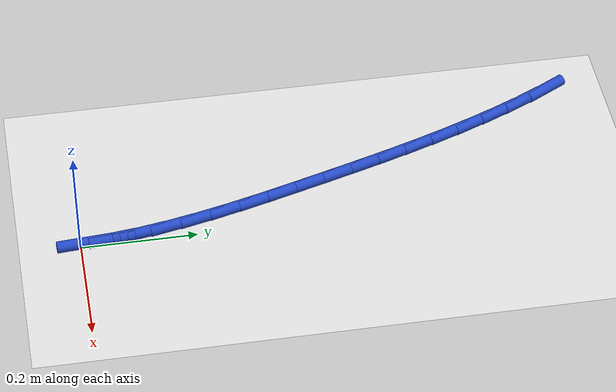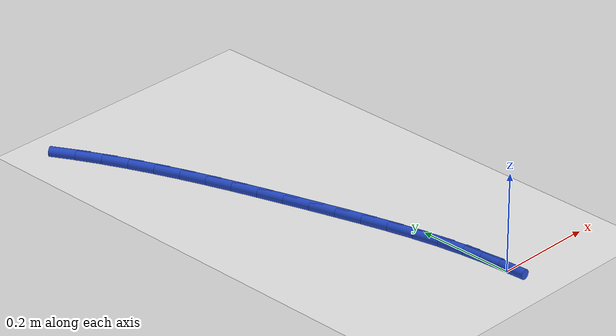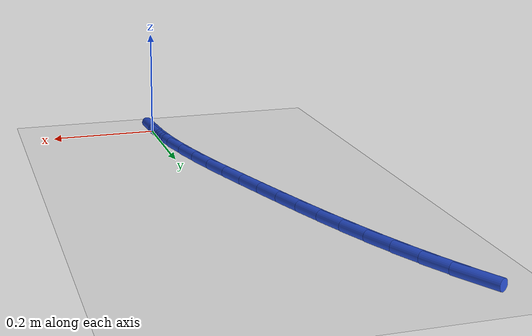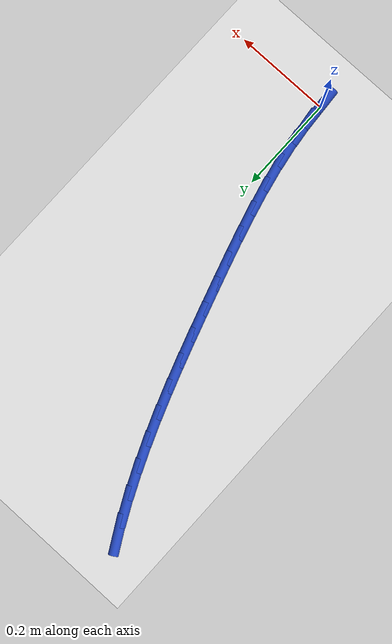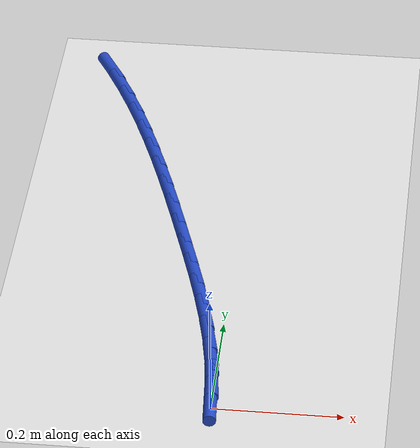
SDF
<sdf version="1.6">
 <world name="default">
  <model name="ground_plane">
   <static>1</static>
   <link name="link">
    <collision name="collision">
     <geometry><plane><normal>0 0 1</normal><size>100 100</size></plane></geometry>
     <surface><friction><ode><mu>100</mu><mu2>50</mu2></ode></friction></surface>
    </collision>
    <visual name="visual">
     <cast_shadows>0</cast_shadows>
     <geometry><plane><normal>0 0 1</normal><size>100 100</size></plane></geometry>
     <material>
      <script><uri>file://media/materials/scripts/gazebo.material</uri><name>Gazebo/WhiteGlow</name></script>
     </material>
    </visual>
   </link>
  </model>
  <model name="line">
   <link name="link_1">
    <pose>-0.0036937516715437836 0.053554314927913765 0.01 0 1.57 -1.4448695262906772</pose>
    <collision name="collision">
     <geometry><cylinder><radius>0.01</radius><length>0.08</length></cylinder></geometry>
    </collision>
    <visual name="visual">
     <material>
      <script><name>Gazebo/Blue</name><uri>file://media/materials/scripts/gazebo.material</uri></script>
     </material>
     <geometry><cylinder><radius>0.01</radius><length>0.08</length></cylinder></geometry>
    </visual>
   </link>
   <link name="link_2">
    <pose>-0.010414687617261727 0.10664366862864294 0.01 0 1.57 -1.3957806114475053</pose>
    <collision name="collision">
     <geometry><cylinder><radius>0.01</radius><length>0.08</length></cylinder></geometry>
    </collision>
    <visual name="visual">
     <material>
      <script><name>Gazebo/Blue</name><uri>file://media/materials/scripts/gazebo.material</uri></script>
     </material>
     <geometry><cylinder><radius>0.01</radius><length>0.08</length></cylinder></geometry>
    </visual>
   </link>
   <link name="link_3">
    <pose>-0.019729100022731504 0.15931960069034995 0.01 0 1.57 -1.354882618912627</pose>
    <collision name="collision">
     <geometry><cylinder><radius>0.01</radius><length>0.08</length></cylinder></geometry>
    </collision>
    <visual name="visual">
     <material>
      <script><name>Gazebo/Blue</name><uri>file://media/materials/scripts/gazebo.material</uri></script>
     </material>
     <geometry><cylinder><radius>0.01</radius><length>0.08</length></cylinder></geometry>
    </visual>
   </link>
   <link name="link_4">
    <pose>-0.031203281073530816 0.21163365070119713 0.01 0 1.57 -1.3222136753891178</pose>
    <collision name="collision">
     <geometry><cylinder><radius>0.01</radius><length>0.08</length></cylinder></geometry>
    </collision>
    <visual name="visual">
     <material>
      <script><name>Gazebo/Blue</name><uri>file://media/materials/scripts/gazebo.material</uri></script>
     </material>
     <geometry><cylinder><radius>0.01</radius><length>0.08</length></cylinder></geometry>
    </visual>
   </link>
   <link name="link_5">
    <pose>-0.04440352295523738 0.26363735824934675 0.01 0 1.57 -1.2977155558671318</pose>
    <collision name="collision">
     <geometry><cylinder><radius>0.01</radius><length>0.08</length></cylinder></geometry>
    </collision>
    <visual name="visual">
     <material>
      <script><name>Gazebo/Blue</name><uri>file://media/materials/scripts/gazebo.material</uri></script>
     </material>
     <geometry><cylinder><radius>0.01</radius><length>0.08</length></cylinder></geometry>
    </visual>
   </link>
   <link name="link_6">
    <pose>-0.05889611785342893 0.3153822629229612 0.01 0 1.57 -1.281299743717585</pose>
    <collision name="collision">
     <geometry><cylinder><radius>0.01</radius><length>0.08</length></cylinder></geometry>
    </collision>
    <visual name="visual">
     <material>
      <script><name>Gazebo/Blue</name><uri>file://media/materials/scripts/gazebo.material</uri></script>
     </material>
     <geometry><cylinder><radius>0.01</radius><length>0.08</length></cylinder></geometry>
    </visual>
   </link>
   <link name="link_7">
    <pose>-0.07424735795368313 0.3669199043102027 0.01 0 1.57 -1.2728729128299205</pose>
    <collision name="collision">
     <geometry><cylinder><radius>0.01</radius><length>0.08</length></cylinder></geometry>
    </collision>
    <visual name="visual">
     <material>
      <script><name>Gazebo/Blue</name><uri>file://media/materials/scripts/gazebo.material</uri></script>
     </material>
     <geometry><cylinder><radius>0.01</radius><length>0.08</length></cylinder></geometry>
    </visual>
   </link>
   <link name="link_8">
    <pose>-0.09002474386038198 0.418301594653843 0.01 0 1.57 -1.2688423150533645</pose>
    <collision name="collision">
     <geometry><cylinder><radius>0.01</radius><length>0.08</length></cylinder></geometry>
    </collision>
    <visual name="visual">
     <material>
      <script><name>Gazebo/Blue</name><uri>file://media/materials/scripts/gazebo.material</uri></script>
     </material>
     <geometry><cylinder><radius>0.01</radius><length>0.08</length></cylinder></geometry>
    </visual>
   </link>
   <link name="link_9">
    <pose>-0.10598533659779288 0.46954298332251443 0.01 0 1.57 -1.2617801475753552</pose>
    <collision name="collision">
     <geometry><cylinder><radius>0.01</radius><length>0.08</length></cylinder></geometry>
    </collision>
    <visual name="visual">
     <material>
      <script><name>Gazebo/Blue</name><uri>file://media/materials/scripts/gazebo.material</uri></script>
     </material>
     <geometry><cylinder><radius>0.01</radius><length>0.08</length></cylinder></geometry>
    </visual>
   </link>
   <link name="link_10">
    <pose>-0.1222803289394932 0.5205855698650784 0.01 0 1.57 -1.2507417529395524</pose>
    <collision name="collision">
     <geometry><cylinder><radius>0.01</radius><length>0.08</length></cylinder></geometry>
    </collision>
    <visual name="visual">
     <material>
      <script><name>Gazebo/Blue</name><uri>file://media/materials/scripts/gazebo.material</uri></script>
     </material>
     <geometry><cylinder><radius>0.01</radius><length>0.08</length></cylinder></geometry>
    </visual>
   </link>
   <link name="link_11">
    <pose>-0.13911004619218892 0.5713616103008354 0.01 0 1.57 -1.2357091730468477</pose>
    <collision name="collision">
     <geometry><cylinder><radius>0.01</radius><length>0.08</length></cylinder></geometry>
    </collision>
    <visual name="visual">
     <material>
      <script><name>Gazebo/Blue</name><uri>file://media/materials/scripts/gazebo.material</uri></script>
     </material>
     <geometry><cylinder><radius>0.01</radius><length>0.08</length></cylinder></geometry>
    </visual>
   </link>
   <link name="link_12">
    <pose>-0.15667481366258565 0.6218033606490847 0.01 0 1.57 -1.216672223572653</pose>
    <collision name="collision">
     <geometry><cylinder><radius>0.01</radius><length>0.08</length></cylinder></geometry>
    </collision>
    <visual name="visual">
     <material>
      <script><name>Gazebo/Blue</name><uri>file://media/materials/scripts/gazebo.material</uri></script>
     </material>
     <geometry><cylinder><radius>0.01</radius><length>0.08</length></cylinder></geometry>
    </visual>
   </link>
   <link name="link_13">
    <pose>-0.1751749566573893 0.6718430769291257 0.01 0 1.57 -1.1936357602661762</pose>
    <collision name="collision">
     <geometry><cylinder><radius>0.01</radius><length>0.08</length></cylinder></geometry>
    </collision>
    <visual name="visual">
     <material>
      <script><name>Gazebo/Blue</name><uri>file://media/materials/scripts/gazebo.material</uri></script>
     </material>
     <geometry><cylinder><radius>0.01</radius><length>0.08</length></cylinder></geometry>
    </visual>
   </link>
   <link name="link_14">
    <pose>-0.19481080048330557 0.7214130151602582 0.01 0 1.57 -1.1666288153397435</pose>
    <collision name="collision">
     <geometry><cylinder><radius>0.01</radius><length>0.08</length></cylinder></geometry>
    </collision>
    <visual name="visual">
     <material>
      <script><name>Gazebo/Blue</name><uri>file://media/materials/scripts/gazebo.material</uri></script>
     </material>
     <geometry><cylinder><radius>0.01</radius><length>0.08</length></cylinder></geometry>
    </visual>
   </link>
   <link name="link_15">
    <pose>-0.2157826704470402 0.7704454313617817 0.01 0 1.57 -1.1357153022135817</pose>
    <collision name="collision">
     <geometry><cylinder><radius>0.01</radius><length>0.08</length></cylinder></geometry>
    </collision>
    <visual name="visual">
     <material>
      <script><name>Gazebo/Blue</name><uri>file://media/materials/scripts/gazebo.material</uri></script>
     </material>
     <geometry><cylinder><radius>0.01</radius><length>0.08</length></cylinder></geometry>
    </visual>
   </link>
   <link name="link_16">
    <pose>-0.2382908918552991 0.8188725815529957 0.01 0 1.57 -1.1010056919985685</pose>
    <collision name="collision">
     <geometry><cylinder><radius>0.01</radius><length>0.08</length></cylinder></geometry>
    </collision>
    <visual name="visual">
     <material>
      <script><name>Gazebo/Blue</name><uri>file://media/materials/scripts/gazebo.material</uri></script>
     </material>
     <geometry><cylinder><radius>0.01</radius><length>0.08</length></cylinder></geometry>
    </visual>
   </link>
   <link name="link_17">
    <pose>-0.262535790014788 0.8666267217532001 0.01 0 1.57 -1.0626686892570967</pose>
    <collision name="collision">
     <geometry><cylinder><radius>0.01</radius><length>0.08</length></cylinder></geometry>
    </collision>
    <visual name="visual">
     <material>
      <script><name>Gazebo/Blue</name><uri>file://media/materials/scripts/gazebo.material</uri></script>
     </material>
     <geometry><cylinder><radius>0.01</radius><length>0.08</length></cylinder></geometry>
    </visual>
   </link>
   <link name="link_150">
    <pose>4.163336342344337e-17 2.3592239273284576e-16 0.01 0 1.57 -1.5004114228795664</pose>
    <collision name="collision">
     <geometry><cylinder><radius>0.01</radius><length>0.08</length></cylinder></geometry>
    </collision>
    <visual name="visual">
     <material>
      <script><name>Gazebo/Blue</name><uri>file://media/materials/scripts/gazebo.material</uri></script>
     </material>
     <geometry><cylinder><radius>0.01</radius><length>0.08</length></cylinder></geometry>
    </visual>
   </link>
   <link name="link_151">
    <pose>-0.003770968622577746 0.053487881431121195 0.01 0 1.57 -1.5004114228795666</pose>
    <collision name="collision">
     <geometry><cylinder><radius>0.01</radius><length>0.08</length></cylinder></geometry>
    </collision>
    <visual name="visual">
     <material>
      <script><name>Gazebo/Blue</name><uri>file://media/materials/scripts/gazebo.material</uri></script>
     </material>
     <geometry><cylinder><radius>0.01</radius><length>0.08</length></cylinder></geometry>
    </visual>
   </link>
  </model>
 </world>
</sdf>
